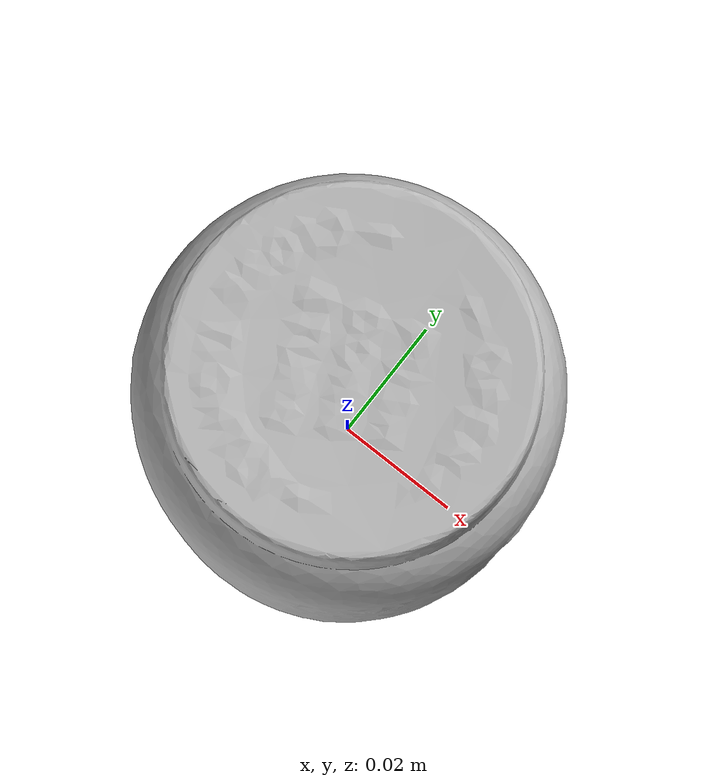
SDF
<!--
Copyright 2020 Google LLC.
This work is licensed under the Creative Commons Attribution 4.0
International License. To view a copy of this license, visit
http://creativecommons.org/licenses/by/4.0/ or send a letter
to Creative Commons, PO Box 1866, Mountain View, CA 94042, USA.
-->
<?xml version="1.0" ?>
<sdf version="1.6">
  <model name="Ortho_Forward_Facing_QCaor9ImJ2G">
    <link name="link_0">
      <visual name="visual">
        <geometry>
          <mesh>
            <uri>meshes/model.obj</uri>
          </mesh>
        </geometry>
      </visual>
      <collision name="collision_0">
        <geometry>
          <mesh>
            <uri>meshes/model.obj</uri>
          </mesh>
        </geometry>
      </collision>
    </link>
  </model>
</sdf>
